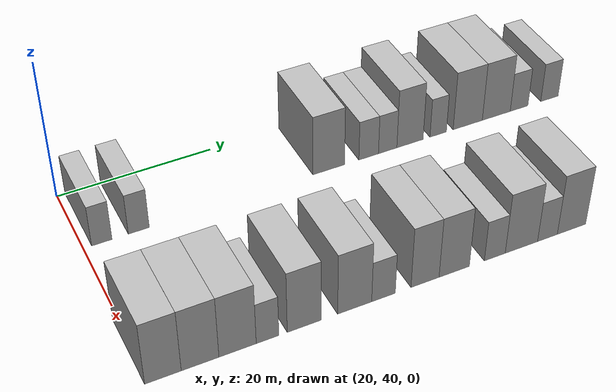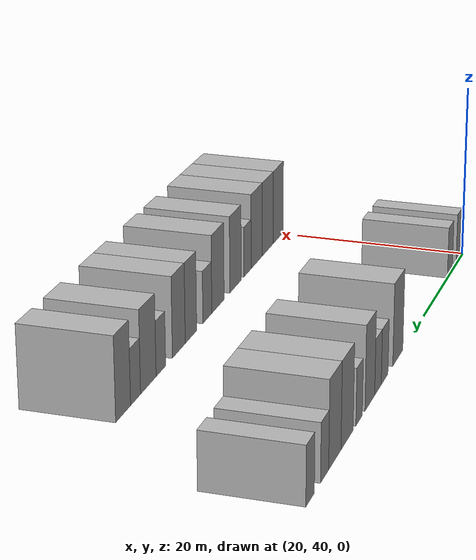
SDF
<sdf version="1.6">
 <world name="default">
  <model name="building_64">
   <static>1</static>
   <pose>25.0000 42.2577 0 0.000000 0.000000 0.000000</pose>
   <link name="link">
    <pose>0 0 3.00 0 0 0</pose>
    <collision name="collision"><geometry><box><size>10.0000 2.4863 6.0000</size></box></geometry></collision>
    <visual name="visual">
     <cast_shadows>0</cast_shadows>
     <geometry><box><size>10.0000 2.4863 6.0000</size></box></geometry>
     <material>
      <script>
       <uri>model://HANNAS_wall/materials/scripts</uri>
       <uri>model://HANNAS_wall/materials/textures</uri>
       <name>vrc/HANNAS_wall</name>
      </script>
     </material>
    </visual>
   </link>
  </model>
  <model name="building_65">
   <static>1</static>
   <pose>25.0000 46.8011 0 0.000000 0.000000 0.000000</pose>
   <link name="link">
    <pose>0 0 3.00 0 0 0</pose>
    <collision name="collision"><geometry><box><size>10.0000 2.6005 6.0000</size></box></geometry></collision>
    <visual name="visual">
     <cast_shadows>0</cast_shadows>
     <geometry><box><size>10.0000 2.6005 6.0000</size></box></geometry>
     <material>
      <script>
       <uri>model://HANNAS_wall/materials/scripts</uri>
       <uri>model://HANNAS_wall/materials/textures</uri>
       <name>vrc/HANNAS_wall</name>
      </script>
     </material>
    </visual>
   </link>
  </model>
  <model name="building_66">
   <static>1</static>
   <pose>25.0000 71.6259 0 0.000000 0.000000 0.000000</pose>
   <link name="link">
    <pose>0 0 4.50 0 0 0</pose>
    <collision name="collision"><geometry><box><size>10.0000 4.3496 9.0000</size></box></geometry></collision>
    <visual name="visual">
     <cast_shadows>0</cast_shadows>
     <geometry><box><size>10.0000 4.3496 9.0000</size></box></geometry>
     <material>
      <script>
       <uri>model://HANNAS_wall/materials/scripts</uri>
       <uri>model://HANNAS_wall/materials/textures</uri>
       <name>vrc/HANNAS_wall</name>
      </script>
     </material>
    </visual>
   </link>
  </model>
  <model name="building_67">
   <static>1</static>
   <pose>25.0000 77.1780 0 0.000000 0.000000 0.000000</pose>
   <link name="link">
    <pose>0 0 3.00 0 0 0</pose>
    <collision name="collision"><geometry><box><size>10.0000 2.7546 6.0000</size></box></geometry></collision>
    <visual name="visual">
     <cast_shadows>0</cast_shadows>
     <geometry><box><size>10.0000 2.7546 6.0000</size></box></geometry>
     <material>
      <script>
       <uri>model://HANNAS_wall/materials/scripts</uri>
       <uri>model://HANNAS_wall/materials/textures</uri>
       <name>vrc/HANNAS_wall</name>
      </script>
     </material>
    </visual>
   </link>
  </model>
  <model name="building_68">
   <static>1</static>
   <pose>25.0000 79.8654 0 0.000000 0.000000 0.000000</pose>
   <link name="link">
    <pose>0 0 3.00 0 0 0</pose>
    <collision name="collision"><geometry><box><size>10.0000 2.6202 6.0000</size></box></geometry></collision>
    <visual name="visual">
     <cast_shadows>0</cast_shadows>
     <geometry><box><size>10.0000 2.6202 6.0000</size></box></geometry>
     <material>
      <script>
       <uri>model://HANNAS_wall/materials/scripts</uri>
       <uri>model://HANNAS_wall/materials/textures</uri>
       <name>vrc/HANNAS_wall</name>
      </script>
     </material>
    </visual>
   </link>
  </model>
  <model name="building_69">
   <static>1</static>
   <pose>25.0000 83.0649 0 0.000000 0.000000 0.000000</pose>
   <link name="link">
    <pose>0 0 4.50 0 0 0</pose>
    <collision name="collision"><geometry><box><size>10.0000 3.7788 9.0000</size></box></geometry></collision>
    <visual name="visual">
     <cast_shadows>0</cast_shadows>
     <geometry><box><size>10.0000 3.7788 9.0000</size></box></geometry>
     <material>
      <script>
       <uri>model://HANNAS_wall/materials/scripts</uri>
       <uri>model://HANNAS_wall/materials/textures</uri>
       <name>vrc/HANNAS_wall</name>
      </script>
     </material>
    </visual>
   </link>
  </model>
  <model name="building_70">
   <static>1</static>
   <pose>25.0000 87.1570 0 0.000000 0.000000 0.000000</pose>
   <link name="link">
    <pose>0 0 3.00 0 0 0</pose>
    <collision name="collision"><geometry><box><size>10.0000 2.4053 6.0000</size></box></geometry></collision>
    <visual name="visual">
     <cast_shadows>0</cast_shadows>
     <geometry><box><size>10.0000 2.4053 6.0000</size></box></geometry>
     <material>
      <script>
       <uri>model://HANNAS_wall/materials/scripts</uri>
       <uri>model://HANNAS_wall/materials/textures</uri>
       <name>vrc/HANNAS_wall</name>
      </script>
     </material>
    </visual>
   </link>
  </model>
  <model name="building_71">
   <static>1</static>
   <pose>25.0000 91.5323 0 0.000000 0.000000 0.000000</pose>
   <link name="link">
    <pose>0 0 4.50 0 0 0</pose>
    <collision name="collision"><geometry><box><size>10.0000 4.3453 9.0000</size></box></geometry></collision>
    <visual name="visual">
     <cast_shadows>0</cast_shadows>
     <geometry><box><size>10.0000 4.3453 9.0000</size></box></geometry>
     <material>
      <script>
       <uri>model://HANNAS_wall/materials/scripts</uri>
       <uri>model://HANNAS_wall/materials/textures</uri>
       <name>vrc/HANNAS_wall</name>
      </script>
     </material>
    </visual>
   </link>
  </model>
  <model name="building_72">
   <static>1</static>
   <pose>25.0000 95.8232 0 0.000000 0.000000 0.000000</pose>
   <link name="link">
    <pose>0 0 4.50 0 0 0</pose>
    <collision name="collision"><geometry><box><size>10.0000 4.2366 9.0000</size></box></geometry></collision>
    <visual name="visual">
     <cast_shadows>0</cast_shadows>
     <geometry><box><size>10.0000 4.2366 9.0000</size></box></geometry>
     <material>
      <script>
       <uri>model://HANNAS_wall/materials/scripts</uri>
       <uri>model://HANNAS_wall/materials/textures</uri>
       <name>vrc/HANNAS_wall</name>
      </script>
     </material>
    </visual>
   </link>
  </model>
  <model name="building_73">
   <static>1</static>
   <pose>25.0000 99.2963 0 0.000000 0.000000 0.000000</pose>
   <link name="link">
    <pose>0 0 3.00 0 0 0</pose>
    <collision name="collision"><geometry><box><size>10.0000 2.7095 6.0000</size></box></geometry></collision>
    <visual name="visual">
     <cast_shadows>0</cast_shadows>
     <geometry><box><size>10.0000 2.7095 6.0000</size></box></geometry>
     <material>
      <script>
       <uri>model://HANNAS_wall/materials/scripts</uri>
       <uri>model://HANNAS_wall/materials/textures</uri>
       <name>vrc/HANNAS_wall</name>
      </script>
     </material>
    </visual>
   </link>
  </model>
  <model name="building_74">
   <static>1</static>
   <pose>25.0000 104.0020 0 0.000000 0.000000 0.000000</pose>
   <link name="link">
    <pose>0 0 3.00 0 0 0</pose>
    <collision name="collision"><geometry><box><size>10.0000 2.7020 6.0000</size></box></geometry></collision>
    <visual name="visual">
     <cast_shadows>0</cast_shadows>
     <geometry><box><size>10.0000 2.7020 6.0000</size></box></geometry>
     <material>
      <script>
       <uri>model://HANNAS_wall/materials/scripts</uri>
       <uri>model://HANNAS_wall/materials/textures</uri>
       <name>vrc/HANNAS_wall</name>
      </script>
     </material>
    </visual>
   </link>
  </model>
  <model name="building_156">
   <static>1</static>
   <pose>47.0000 41.4208 0 0.000000 0.000000 0.000000</pose>
   <link name="link">
    <pose>0 0 4.50 0 0 0</pose>
    <collision name="collision"><geometry><box><size>10.0000 4.0853 9.0000</size></box></geometry></collision>
    <visual name="visual">
     <cast_shadows>0</cast_shadows>
     <geometry><box><size>10.0000 4.0853 9.0000</size></box></geometry>
     <material>
      <script>
       <uri>model://HANNAS_wall/materials/scripts</uri>
       <uri>model://HANNAS_wall/materials/textures</uri>
       <name>vrc/HANNAS_wall</name>
      </script>
     </material>
    </visual>
   </link>
  </model>
  <model name="building_157">
   <static>1</static>
   <pose>47.0000 45.6033 0 0.000000 0.000000 0.000000</pose>
   <link name="link">
    <pose>0 0 4.50 0 0 0</pose>
    <collision name="collision"><geometry><box><size>10.0000 4.2796 9.0000</size></box></geometry></collision>
    <visual name="visual">
     <cast_shadows>0</cast_shadows>
     <geometry><box><size>10.0000 4.2796 9.0000</size></box></geometry>
     <material>
      <script>
       <uri>model://HANNAS_wall/materials/scripts</uri>
       <uri>model://HANNAS_wall/materials/textures</uri>
       <name>vrc/HANNAS_wall</name>
      </script>
     </material>
    </visual>
   </link>
  </model>
  <model name="building_158">
   <static>1</static>
   <pose>47.0000 49.9049 0 0.000000 0.000000 0.000000</pose>
   <link name="link">
    <pose>0 0 4.50 0 0 0</pose>
    <collision name="collision"><geometry><box><size>10.0000 4.3237 9.0000</size></box></geometry></collision>
    <visual name="visual">
     <cast_shadows>0</cast_shadows>
     <geometry><box><size>10.0000 4.3237 9.0000</size></box></geometry>
     <material>
      <script>
       <uri>model://HANNAS_wall/materials/scripts</uri>
       <uri>model://HANNAS_wall/materials/textures</uri>
       <name>vrc/HANNAS_wall</name>
      </script>
     </material>
    </visual>
   </link>
  </model>
  <model name="building_159">
   <static>1</static>
   <pose>47.0000 53.3974 0 0.000000 0.000000 0.000000</pose>
   <link name="link">
    <pose>0 0 3.00 0 0 0</pose>
    <collision name="collision"><geometry><box><size>10.0000 2.6613 6.0000</size></box></geometry></collision>
    <visual name="visual">
     <cast_shadows>0</cast_shadows>
     <geometry><box><size>10.0000 2.6613 6.0000</size></box></geometry>
     <material>
      <script>
       <uri>model://HANNAS_wall/materials/scripts</uri>
       <uri>model://HANNAS_wall/materials/textures</uri>
       <name>vrc/HANNAS_wall</name>
      </script>
     </material>
    </visual>
   </link>
  </model>
  <model name="building_160">
   <static>1</static>
   <pose>47.0000 57.7718 0 0.000000 0.000000 0.000000</pose>
   <link name="link">
    <pose>0 0 4.50 0 0 0</pose>
    <collision name="collision"><geometry><box><size>10.0000 4.0873 9.0000</size></box></geometry></collision>
    <visual name="visual">
     <cast_shadows>0</cast_shadows>
     <geometry><box><size>10.0000 4.0873 9.0000</size></box></geometry>
     <material>
      <script>
       <uri>model://HANNAS_wall/materials/scripts</uri>
       <uri>model://HANNAS_wall/materials/textures</uri>
       <name>vrc/HANNAS_wall</name>
      </script>
     </material>
    </visual>
   </link>
  </model>
  <model name="building_161">
   <static>1</static>
   <pose>47.0000 63.9217 0 0.000000 0.000000 0.000000</pose>
   <link name="link">
    <pose>0 0 4.50 0 0 0</pose>
    <collision name="collision"><geometry><box><size>10.0000 4.2124 9.0000</size></box></geometry></collision>
    <visual name="visual">
     <cast_shadows>0</cast_shadows>
     <geometry><box><size>10.0000 4.2124 9.0000</size></box></geometry>
     <material>
      <script>
       <uri>model://HANNAS_wall/materials/scripts</uri>
       <uri>model://HANNAS_wall/materials/textures</uri>
       <name>vrc/HANNAS_wall</name>
      </script>
     </material>
    </visual>
   </link>
  </model>
  <model name="building_162">
   <static>1</static>
   <pose>47.0000 67.5108 0 0.000000 0.000000 0.000000</pose>
   <link name="link">
    <pose>0 0 3.00 0 0 0</pose>
    <collision name="collision"><geometry><box><size>10.0000 2.9660 6.0000</size></box></geometry></collision>
    <visual name="visual">
     <cast_shadows>0</cast_shadows>
     <geometry><box><size>10.0000 2.9660 6.0000</size></box></geometry>
     <material>
      <script>
       <uri>model://HANNAS_wall/materials/scripts</uri>
       <uri>model://HANNAS_wall/materials/textures</uri>
       <name>vrc/HANNAS_wall</name>
      </script>
     </material>
    </visual>
   </link>
  </model>
  <model name="building_163">
   <static>1</static>
   <pose>47.0000 72.8011 0 0.000000 0.000000 0.000000</pose>
   <link name="link">
    <pose>0 0 4.50 0 0 0</pose>
    <collision name="collision"><geometry><box><size>10.0000 3.6144 9.0000</size></box></geometry></collision>
    <visual name="visual">
     <cast_shadows>0</cast_shadows>
     <geometry><box><size>10.0000 3.6144 9.0000</size></box></geometry>
     <material>
      <script>
       <uri>model://HANNAS_wall/materials/scripts</uri>
       <uri>model://HANNAS_wall/materials/textures</uri>
       <name>vrc/HANNAS_wall</name>
      </script>
     </material>
    </visual>
   </link>
  </model>
  <model name="building_164">
   <static>1</static>
   <pose>47.0000 76.5898 0 0.000000 0.000000 0.000000</pose>
   <link name="link">
    <pose>0 0 4.50 0 0 0</pose>
    <collision name="collision"><geometry><box><size>10.0000 3.9630 9.0000</size></box></geometry></collision>
    <visual name="visual">
     <cast_shadows>0</cast_shadows>
     <geometry><box><size>10.0000 3.9630 9.0000</size></box></geometry>
     <material>
      <script>
       <uri>model://HANNAS_wall/materials/scripts</uri>
       <uri>model://HANNAS_wall/materials/textures</uri>
       <name>vrc/HANNAS_wall</name>
      </script>
     </material>
    </visual>
   </link>
  </model>
  <model name="building_165">
   <static>1</static>
   <pose>47.0000 81.9695 0 0.000000 0.000000 0.000000</pose>
   <link name="link">
    <pose>0 0 3.00 0 0 0</pose>
    <collision name="collision"><geometry><box><size>10.0000 2.7966 6.0000</size></box></geometry></collision>
    <visual name="visual">
     <cast_shadows>0</cast_shadows>
     <geometry><box><size>10.0000 2.7966 6.0000</size></box></geometry>
     <material>
      <script>
       <uri>model://HANNAS_wall/materials/scripts</uri>
       <uri>model://HANNAS_wall/materials/textures</uri>
       <name>vrc/HANNAS_wall</name>
      </script>
     </material>
    </visual>
   </link>
  </model>
  <model name="building_166">
   <static>1</static>
   <pose>47.0000 85.5713 0 0.000000 0.000000 0.000000</pose>
   <link name="link">
    <pose>0 0 4.50 0 0 0</pose>
    <collision name="collision"><geometry><box><size>10.0000 4.4070 9.0000</size></box></geometry></collision>
    <visual name="visual">
     <cast_shadows>0</cast_shadows>
     <geometry><box><size>10.0000 4.4070 9.0000</size></box></geometry>
     <material>
      <script>
       <uri>model://HANNAS_wall/materials/scripts</uri>
       <uri>model://HANNAS_wall/materials/textures</uri>
       <name>vrc/HANNAS_wall</name>
      </script>
     </material>
    </visual>
   </link>
  </model>
  <model name="building_167">
   <static>1</static>
   <pose>47.0000 89.1407 0 0.000000 0.000000 0.000000</pose>
   <link name="link">
    <pose>0 0 3.00 0 0 0</pose>
    <collision name="collision"><geometry><box><size>10.0000 2.7319 6.0000</size></box></geometry></collision>
    <visual name="visual">
     <cast_shadows>0</cast_shadows>
     <geometry><box><size>10.0000 2.7319 6.0000</size></box></geometry>
     <material>
      <script>
       <uri>model://HANNAS_wall/materials/scripts</uri>
       <uri>model://HANNAS_wall/materials/textures</uri>
       <name>vrc/HANNAS_wall</name>
      </script>
     </material>
    </visual>
   </link>
  </model>
  <model name="building_168">
   <static>1</static>
   <pose>47.0000 92.4949 0 0.000000 0.000000 0.000000</pose>
   <link name="link">
    <pose>0 0 4.50 0 0 0</pose>
    <collision name="collision"><geometry><box><size>10.0000 3.9764 9.0000</size></box></geometry></collision>
    <visual name="visual">
     <cast_shadows>0</cast_shadows>
     <geometry><box><size>10.0000 3.9764 9.0000</size></box></geometry>
     <material>
      <script>
       <uri>model://HANNAS_wall/materials/scripts</uri>
       <uri>model://HANNAS_wall/materials/textures</uri>
       <name>vrc/HANNAS_wall</name>
      </script>
     </material>
    </visual>
   </link>
  </model>
 </world>
</sdf>
